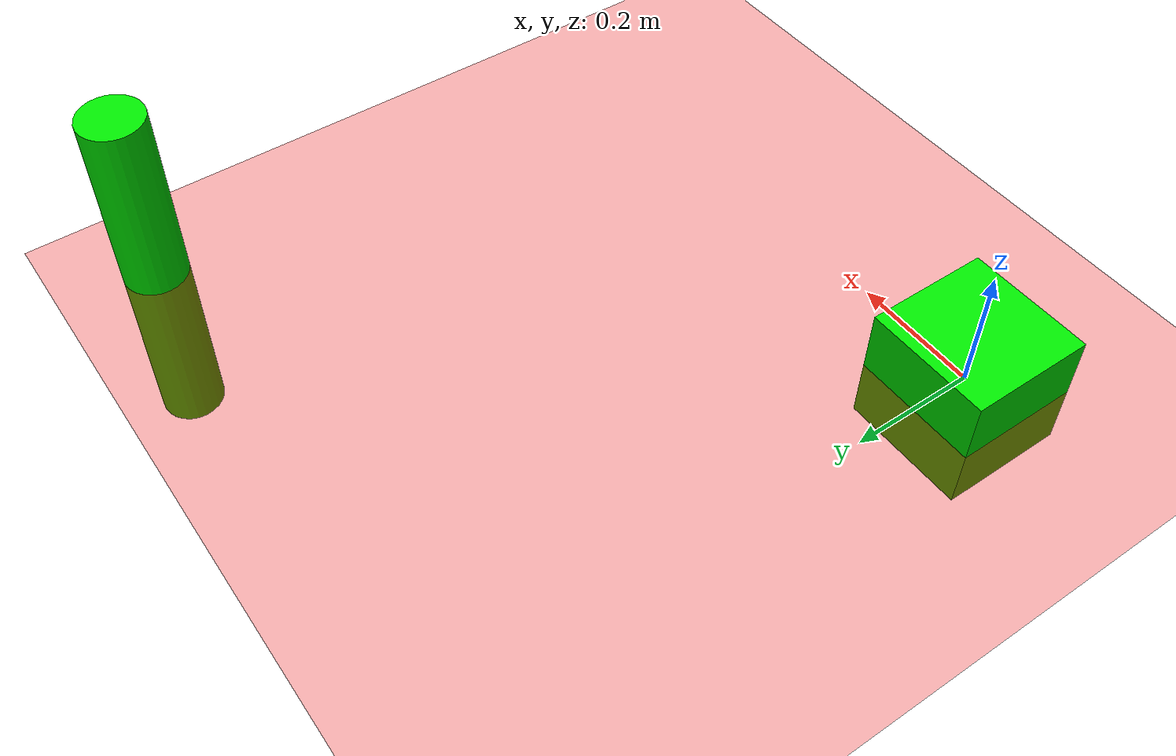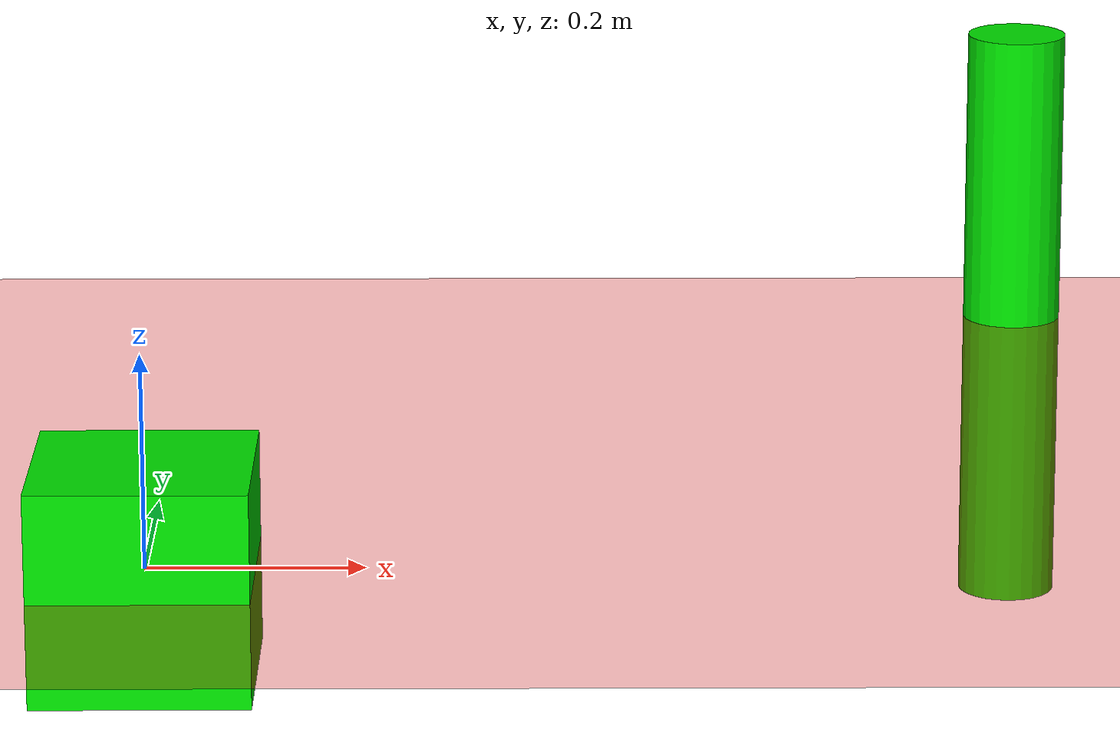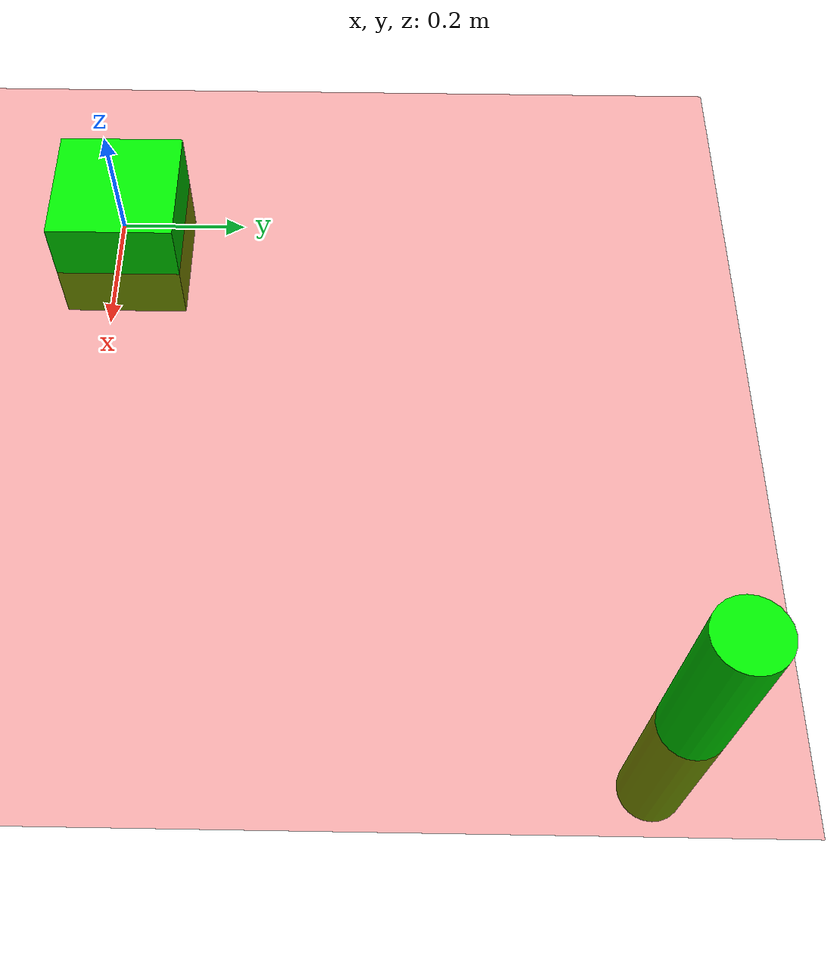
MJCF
<mujoco>
  <worldbody>
    <light diffuse=".5 .5 .5" pos="0 0 3" dir="0 0 -1"/>
    <geom type="plane" size="1 1 0.01" rgba=".9 0 0 1"/>
    <body>
      <joint type="free"/>
      <geom type="box" pos="0 0 0" size=".1 .1 .1" rgba="0 .9 0 1"/>
    </body>

    <body>
      <joint type="free"/>
      <geom type="cylinder" pos="0.85 0.85 0" size=".05 .3" rgba="0 .9 0 1"/>
    </body>

  </worldbody>
</mujoco>
